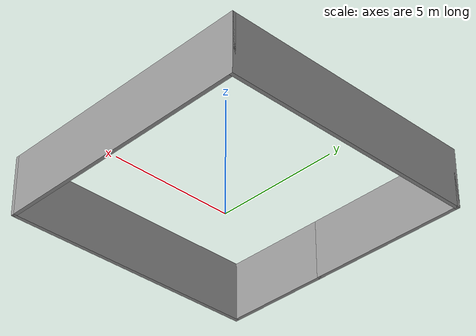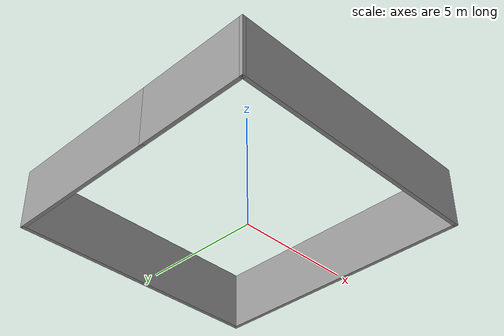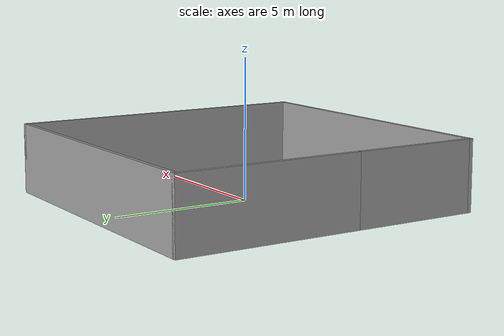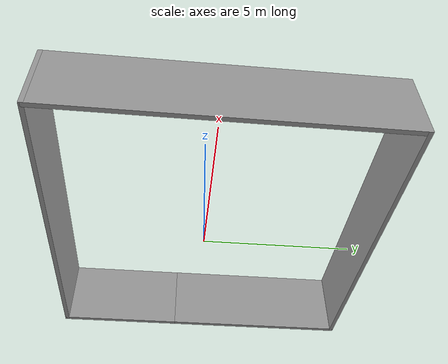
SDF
<?xml version='1.0'?>
<sdf version='1.7'>
  <model name='aaaaaaa'>
    <pose>-0.135 0.32 0 0 -0 0</pose>
    <link name='Wall_0'>
      <collision name='Wall_0_Collision'>
        <geometry>
          <box>
            <size>6.75 0.15 2.5</size>
          </box>
        </geometry>
        <pose>0 0 1.25 0 -0 0</pose>
      </collision>
      <visual name='Wall_0_Visual'>
        <pose>0 0 1.25 0 -0 0</pose>
        <geometry>
          <box>
            <size>6.75 0.15 2.5</size>
          </box>
        </geometry>
        <material>
          <script>
            <uri>file://media/materials/scripts/gazebo.material</uri>
            <name>Gazebo/Grey</name>
          </script>
          <ambient>1 1 1 1</ambient>
        </material>
        <meta>
          <layer>0</layer>
        </meta>
      </visual>
      <pose>-5.425 2.25 0 0 -0 1.5708</pose>
    </link>
    <link name='Wall_1'>
      <collision name='Wall_1_Collision'>
        <geometry>
          <box>
            <size>11 0.15 2.5</size>
          </box>
        </geometry>
        <pose>0 0 1.25 0 -0 0</pose>
      </collision>
      <visual name='Wall_1_Visual'>
        <pose>0 0 1.25 0 -0 0</pose>
        <geometry>
          <box>
            <size>11 0.15 2.5</size>
          </box>
        </geometry>
        <material>
          <script>
            <uri>file://media/materials/scripts/gazebo.material</uri>
            <name>Gazebo/Grey</name>
          </script>
          <ambient>1 1 1 1</ambient>
        </material>
        <meta>
          <layer>0</layer>
        </meta>
      </visual>
      <pose>-0 5.55 0 0 -0 0</pose>
    </link>
    <link name='Wall_2'>
      <collision name='Wall_2_Collision'>
        <geometry>
          <box>
            <size>11.25 0.15 2.5</size>
          </box>
        </geometry>
        <pose>0 0 1.25 0 -0 0</pose>
      </collision>
      <visual name='Wall_2_Visual'>
        <pose>0 0 1.25 0 -0 0</pose>
        <geometry>
          <box>
            <size>11.25 0.15 2.5</size>
          </box>
        </geometry>
        <material>
          <script>
            <uri>file://media/materials/scripts/gazebo.material</uri>
            <name>Gazebo/Grey</name>
          </script>
          <ambient>1 1 1 1</ambient>
        </material>
        <meta>
          <layer>0</layer>
        </meta>
      </visual>
      <pose>5.425 -0 0 0 -0 -1.5708</pose>
    </link>
    <link name='Wall_3'>
      <collision name='Wall_3_Collision'>
        <geometry>
          <box>
            <size>11 0.15 2.5</size>
          </box>
        </geometry>
        <pose>0 0 1.25 0 -0 0</pose>
      </collision>
      <visual name='Wall_3_Visual'>
        <pose>0 0 1.25 0 -0 0</pose>
        <geometry>
          <box>
            <size>11 0.15 2.5</size>
          </box>
        </geometry>
        <material>
          <script>
            <uri>file://media/materials/scripts/gazebo.material</uri>
            <name>Gazebo/Grey</name>
          </script>
          <ambient>1 1 1 1</ambient>
        </material>
        <meta>
          <layer>0</layer>
        </meta>
      </visual>
      <pose>-0 -5.55 0 0 -0 3.14159</pose>
    </link>
    <link name='Wall_4'>
      <collision name='Wall_4_Collision'>
        <geometry>
          <box>
            <size>4.65 0.15 2.5</size>
          </box>
        </geometry>
        <pose>0 0 1.25 0 -0 0</pose>
      </collision>
      <visual name='Wall_4_Visual'>
        <pose>0 0 1.25 0 -0 0</pose>
        <geometry>
          <box>
            <size>4.65 0.15 2.5</size>
          </box>
        </geometry>
        <material>
          <script>
            <uri>file://media/materials/scripts/gazebo.material</uri>
            <name>Gazebo/Grey</name>
          </script>
          <ambient>1 1 1 1</ambient>
        </material>
        <meta>
          <layer>0</layer>
        </meta>
      </visual>
      <pose>-5.425 -3.3 0 0 -0 1.5708</pose>
    </link>
    <static>1</static>
  </model>
</sdf>
